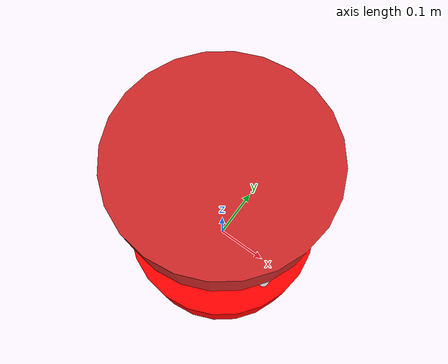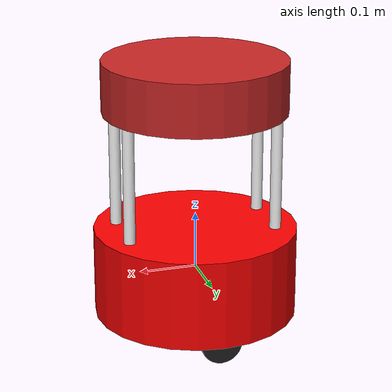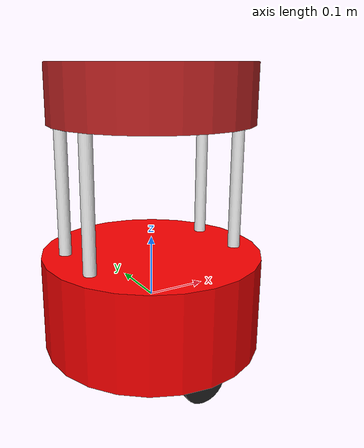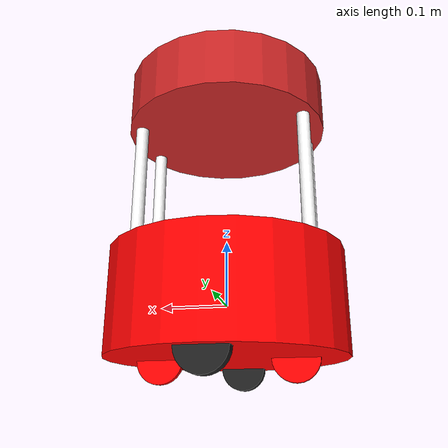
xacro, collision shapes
<?xml version="1.0"?>
<robot name="box_bot" xmlns:xacro="http://ros.org/wiki/xacro">

<xacro:include filename="$(find barista_robot_description)/xacro/wheel.xacro" />
<xacro:include filename="$(find barista_robot_description)/xacro/caster.xacro" />
<xacro:include filename="$(find barista_robot_description)/xacro/standoff.xacro" />
<xacro:include filename="$(find barista_robot_description)/xacro/cup_holder_tray.xacro" />
<xacro:include filename="$(find barista_robot_description)/xacro/laser_scanner_single.xacro" />

  <material name="red">
      <color rgba="1.0 0.0 0.0 1"/>
  </material>

  <material name="green_light">
      <color rgba="0.0 1.0 0.0 1"/>
  </material>

  <material name="green_dark">
    <color rgba="0.0 0.5 0.0 1"/>
  </material>

  <material name="blue">
      <color rgba="0.0 0.0 1.0 1"/>
  </material>

  <material name="black">
      <color rgba="0.0 0.0 0.0 1"/>
  </material>

  <material name="white">
      <color rgba="1.0 1.0 1.0 1"/>
  </material>

  <material name="box_bot_blue">
      <color rgba="0.088656 0.428691 0.491021 1"/>
  </material>

  <link name="base_link">
  </link>

  <!-- Body -->
  <link name="chassis">
    <visual>
      <geometry>
        <cylinder length="0.155" radius="0.178"/>
      </geometry>
      <material name="red"/>
    </visual>
    <collision>
      <geometry>
        <cylinder length="0.155" radius="0.178" />
      </geometry>
    </collision>
    <inertial>
      <origin xyz="0 0 0" rpy="0 0 0" />
      <mass value="0.5" />
      <inertia ixx="0.00496154167" ixy="0.0" ixz="0.0" iyy="0.00496154167" iyz="0.0" izz="0.007921" />
    </inertial>
  </link>

  <joint name="base_link_joint" type="fixed">
    <origin rpy="0 0 0" xyz="0 0 0" />
    <parent link="base_link" />
    <child link="chassis" />
  </joint>

    <gazebo reference="chassis">
        <material>Gazebo/Red</material>
  </gazebo>

  <xacro:standoff rod_name="rod_1" />
  <xacro:standoff rod_name="rod_2" />
  <xacro:standoff rod_name="rod_3" />
  <xacro:standoff rod_name="rod_4" />

  <joint name="rod_1_joint" type="fixed">
    <parent link="base_link"/>
    <child link="rod_1"/>
    <origin rpy="0 0 0" xyz="0.130 0.05 0.185" />
  </joint>

  <gazebo reference="rod_1">
        <material>Gazebo/White</material>
  </gazebo>

  <joint name="rod_2_joint" type="fixed">
    <parent link="base_link"/>
    <child link="rod_2"/>
    <origin xyz="0.130 -0.05 0.185" rpy="0 0 0"/>
  </joint>

  <gazebo reference="rod_2">
        <material>Gazebo/White</material>
  </gazebo>

  <joint name="rod_3_joint" type="fixed">
    <parent link="base_link"/>
    <child link="rod_3"/>
    <origin xyz="-0.130 0.05 0.185" rpy="0 0 0"/>
  </joint>

  <gazebo reference="rod_3">
        <material>Gazebo/White</material>
  </gazebo>

  <joint name="rod_4_joint" type="fixed">
    <parent link="base_link"/>
    <child link="rod_4"/>
    <origin xyz="-0.130 -0.05 0.185" rpy="0 0 0"/>
  </joint>

  <gazebo reference="rod_4">
        <material>Gazebo/White</material>
  </gazebo>

<xacro:cup_holder_tray cup_name="cupholder_link" />

<joint name="cupholder_joint" type="fixed">
  <parent link="base_link"/>
  <child link="cupholder_link"/>
  <origin xyz="0 0 0.330" rpy="0 0 0"/>
</joint>

<gazebo reference="cupholder_link">
    <material>Gazebo/Red</material>
</gazebo>

  <xacro:wheel wheel_name="left_wheel" />
  <xacro:wheel wheel_name="right_wheel" />

  <joint name="joint_left_wheel" type="fixed">
    <origin rpy="0 0 0" xyz="0 0.15 -0.0775"/>
    <child link="left_wheel"/>
    <parent link="base_link"/>
    <axis rpy="0 0 0" xyz="0 1 0"/>
    <limit effort="1000" velocity="100"/>
    <joint_properties damping="1.0" friction="1.0"/>
  </joint>

  <joint name="joint_right_wheel" type="fixed">
    <origin rpy="0 0 0" xyz="0 -0.15 -0.0775"/>
    <child link="right_wheel"/>
    <parent link="base_link"/>
    <axis rpy="0 0 0" xyz="0 1 0"/>
    <limit effort="1000" velocity="100"/>
    <joint_properties damping="1.0" friction="1.0"/>
  </joint>

  <gazebo reference="left_wheel">
    <kp>10000000000000.0</kp>
    <kd>10000000000000.0</kd>
    <mu1>10.0</mu1>
    <mu2>10.0</mu2>
    <material>Gazebo/Black</material>
  </gazebo>

  <gazebo reference="right_wheel">
    <kp>10000000000000.0</kp>
    <kd>10000000000000.0</kd>
    <mu1>10.0</mu1>
    <mu2>10.0</mu2>
    <material>Gazebo/Black</material>
  </gazebo>

<xacro:caster posi="front" />

  <joint name="front_yaw_joint" type="fixed">
    <origin rpy="0 0 0" xyz="0.10 0 -0.0770" />
    <parent link="chassis" />
    <child link="front_yaw_link" />
    <axis xyz="0 0 1" />
    <limit effort="1000.0" velocity="100.0" />
    <dynamics damping="0.0" friction="0.1"/>
  </joint>
  <gazebo reference="front_yaw_link">
        <material>Gazebo/Blue</material>
  </gazebo>

  <joint name="front_roll_joint" type="fixed">
    <origin rpy="0 0 0" xyz="0 0 0" />
    <parent link="front_yaw_link" />
    <child link="front_roll_link" />
    <axis xyz="1 0 0" />
    <limit effort="1000.0" velocity="100.0" />
    <dynamics damping="0.0" friction="0.1"/>
  </joint>

  <gazebo reference="front_roll_link">
        <material>Gazebo/Blue</material>
  </gazebo>

  <joint name="front_pitch_joint" type="fixed">
    <origin rpy="0 0 0" xyz="0 0 0" />
    <parent link="front_roll_link" />
    <child link="front_pitch_link" />
    <axis xyz="0 1 0" />
    <limit effort="1000.0" velocity="100.0" />
    <dynamics damping="0.0" friction="0.1"/>
  </joint>

  <gazebo reference="front_pitch_link">
    <kp>10000000.0</kp>
    <kd>10000000.0</kd>
    <mu1>0.5</mu1>
    <mu2>0.5</mu2>
    <material>Gazebo/Black</material>
  </gazebo>

<xacro:caster posi="back" />

  <joint name="back_yaw_joint" type="fixed">
    <origin rpy="0 0 0" xyz="-0.10 0 -0.0770" />
    <parent link="chassis" />
    <child link="back_yaw_link" />
    <axis xyz="0 0 1" />
    <limit effort="1000.0" velocity="100.0" />
    <dynamics damping="0.0" friction="0.1"/>
  </joint>

  <gazebo reference="back_yaw_link">
        <material>Gazebo/Blue</material>
  </gazebo>

  <joint name="back_roll_joint" type="fixed">
    <origin rpy="0 0 0" xyz="0 0 0" />
    <parent link="back_yaw_link" />
    <child link="back_roll_link" />
    <axis xyz="1 0 0" />
    <limit effort="1000.0" velocity="100.0" />
    <dynamics damping="0.0" friction="0.1"/>
  </joint>

  <gazebo reference="back_roll_link">
        <material>Gazebo/Blue</material>
  </gazebo>

  <joint name="back_pitch_joint" type="fixed">
    <origin rpy="0 0 0" xyz="0 0 0" />
    <parent link="back_roll_link" />
    <child link="back_pitch_link" />
    <axis xyz="0 1 0" />
    <limit effort="1000.0" velocity="100.0" />
    <dynamics damping="0.0" friction="0.1"/>
  </joint>

  <gazebo reference="back_pitch_link">
    <kp>1000000000.0</kp>
    <kd>1000000000.0</kd>
    <mu1>0.5</mu1>
    <mu2>0.5</mu2>
    <material>Gazebo/Blue</material>
  </gazebo>

<xacro:laser_scanner include_laser="True" />

  <!-- Differential drive -->
  <gazebo>
    <plugin filename="libgazebo_ros_diff_drive.so" name="differential_drive_controller">

      <!-- wheels -->
      <left_joint>joint_left_wheel</left_joint>
      <right_joint>joint_right_wheel</right_joint>

      <!-- kinematics -->
      <wheel_separation>0.3</wheel_separation>
      <wheel_diameter>0.0704</wheel_diameter>

      <!-- limits -->
      <max_wheel_torque>1.0</max_wheel_torque>
      <max_wheel_acceleration>2.0</max_wheel_acceleration>

      <!-- output -->
      <publish_odom>true</publish_odom>
      <publish_odom_tf>true</publish_odom_tf>

      <odometry_frame>odom</odometry_frame>
      <robot_base_frame>base_link</robot_base_frame>

    </plugin>
  </gazebo>

</robot>

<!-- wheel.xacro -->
<robot name="wheel"  xmlns:xacro="http://ros.org/wiki/xacro">
  <xacro:property name="wheel_radius" value="0.0352" />
  <xacro:property name="wheel_width" value="0.0206" />

<xacro:macro name="wheel" params="wheel_name">
  <link name="${wheel_name}">
      <visual>
        <origin rpy="0 1.5707 1.5707" xyz="0 0 0"/>
        <geometry>
          <cylinder length="${wheel_width}" radius="${wheel_radius}"/>
        </geometry>
      </visual>

      <collision>
        <origin rpy="0 1.5707 1.5707" xyz="0 0 0"/>
        <geometry>
          <cylinder length="${wheel_width}" radius="${wheel_radius}"/>
        </geometry>
      </collision>

    <inertial>
      <origin rpy="0 1.5707 1.5707" xyz="0 0 0"/>
      <mass value="0.5" />
      <inertia ixx="0.000172561667" ixy="0.0" ixz="0.0" iyy="0.000172561667" iyz="0.0" izz="0.00030976" />
    </inertial>
  </link>

</xacro:macro>

</robot>

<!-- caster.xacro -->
<robot name="caster"  xmlns:xacro="http://ros.org/wiki/xacro">
  <xacro:property name="caster_length" value="0.01" />
  <xacro:property name="caster_radius" value="0.035" />

<xacro:macro name="caster" params="posi">

  <link name="${posi}_yaw_link">
    <visual>
        <origin rpy="0 1.5707 1.5707" xyz="0 0 0"/>
        <geometry>
          <cylinder length="${caster_length}" radius="${caster_radius}"/>
        </geometry>
        <material name="red"/>
      </visual>
    <collision>
      <origin rpy="0 1.5707 1.5707" xyz="0 0 0" />
      <geometry>
        <cylinder length="0.01" radius="0.035"/>
      </geometry>
    </collision>
  </link>

  <link name="${posi}_roll_link">
      <visual>
        <origin rpy="0 1.5707 1.5707" xyz="0 0 0"/>
        <geometry>
          <cylinder length="${caster_length}" radius="${caster_radius}"/>
        </geometry>
        <material name="blue"/>
      </visual>
      <collision>
      <origin rpy="0 1.5707 1.5707" xyz="0 0 0" />
      <geometry>
        <cylinder length="${caster_length}" radius="${caster_radius}"/>
      </geometry>
    </collision>

  </link>

  <link name="${posi}_pitch_link">
    <visual>
      <origin rpy="0 1.5707 1.5707" xyz="0 0 0"/>
      <geometry>
        <sphere radius="${caster_radius}"/>
      </geometry>
      <material name="black"/>
    </visual>
    <collision>
      <origin rpy="0 1.5707 1.5707" xyz="0 0 0" />
      <geometry>
        <cylinder length="${caster_length}" radius="${caster_radius}"/>
      </geometry>
    </collision>
  </link>
</xacro:macro>

</robot>

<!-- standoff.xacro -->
<robot name="standoff"  xmlns:xacro="http://ros.org/wiki/xacro">
  <xacro:property name="rod_length" value="0.22" />
  <xacro:property name="rod_radius" value="0.01" />

<xacro:macro name="standoff" params="rod_name">
  <link name="${rod_name}">
    <visual>
      <origin xyz="0 0 0" rpy="0 0 0"/>
      <geometry>
        <cylinder length="${rod_length}" radius="${rod_radius}"/>
      </geometry>
      <material name="white"/>
    </visual>
    <collision>
      <origin xyz="0 0 0" rpy="0 0 0"/>
      <geometry>
        <cylinder length="${rod_length}" radius="${rod_radius}"/>
      </geometry>
    </collision>
    <inertial>
      <origin xyz="0 0 0" rpy="0 0 0" />
      <mass value="0.5" />
      <inertia ixx="0.00202916667" ixy="0.0" ixz="0.0" iyy="0.00202916667" iyz="0.0" izz="0.000025" />
    </inertial>
  </link>

</xacro:macro>

</robot>

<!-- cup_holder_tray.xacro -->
<robot name="cup_holder_tray"  xmlns:xacro="http://ros.org/wiki/xacro">
  <xacro:property name="cup_length" value="0.09" />
  <xacro:property name="cup_radius" value="0.16" />

<xacro:macro name="cup_holder_tray" params="cup_name">
  <link name="${cup_name}">
    <visual>
    <origin xyz="0 0 0" rpy="0 0 0"/>
    <geometry>
      <cylinder length="${cup_length}" radius="${cup_radius}"/>
    </geometry>
  </visual>
  <collision>
    <origin xyz="0 0 0" rpy="0 0 0"/>
    <geometry>
      <cylinder length="${cup_length}" radius="${cup_radius}"/>
    </geometry>
  </collision>
    <inertial>
      <origin xyz="0 0 0" rpy="0 0 0" />
      <mass value="1" />
      <inertia ixx="0.007075" ixy="0.0" ixz="0.0" iyy="0.007075" iyz="0.0" izz="0.0128" />
    </inertial>
  </link>

</xacro:macro>

</robot>

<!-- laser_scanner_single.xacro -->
<robot xmlns:xacro="http://ros.org/wiki/xacro">

  <xacro:macro name="laser_scanner" params="include_laser:=true">
    <xacro:if value="${include_laser}">
      <link name="lidar">
          <visual>
          <origin rpy="0 0 0" xyz="0.0 0 -0.05" />
              <geometry>
                  <mesh filename="package://barista_robot_description/meshes/hokuyo_urg_04lx.dae"/>
              </geometry>
          </visual>
      </link>

      <joint name="lidar_joint" type="fixed">
          <origin rpy="0 0 0" xyz="-0.05 0 0.125" />
          <parent link="chassis" />
          <child link="lidar" />
      </joint>

      <gazebo reference="lidar">
          <material>Gazebo/Black</material>
      </gazebo>

    <gazebo reference="lidar">
      <sensor name="ray" type="ray">
          <pose>0 0 0 0 0 0</pose>
          <ray>
            <scan>
              <horizontal>
                <samples>360</samples>
                <resolution>5.0</resolution>
                <min_angle>-3.14</min_angle>
                <max_angle>3.14</max_angle>
              </horizontal>
            </scan>
            <range>
              <min>0.1</min>
              <max>5.0</max>
            </range>
          </ray>
          <always_on>true</always_on>
          <visualize>true</visualize>
          <update_rate>50.0</update_rate>
          <plugin name="laser" filename="libgazebo_ros_ray_sensor.so">
            <ros>
              <remapping>~/out:=scan</remapping>
            </ros>
            <output_type>sensor_msgs/LaserScan</output_type>
          </plugin>
      </sensor>
    </gazebo>

    </xacro:if>
  </xacro:macro>

</robot>
